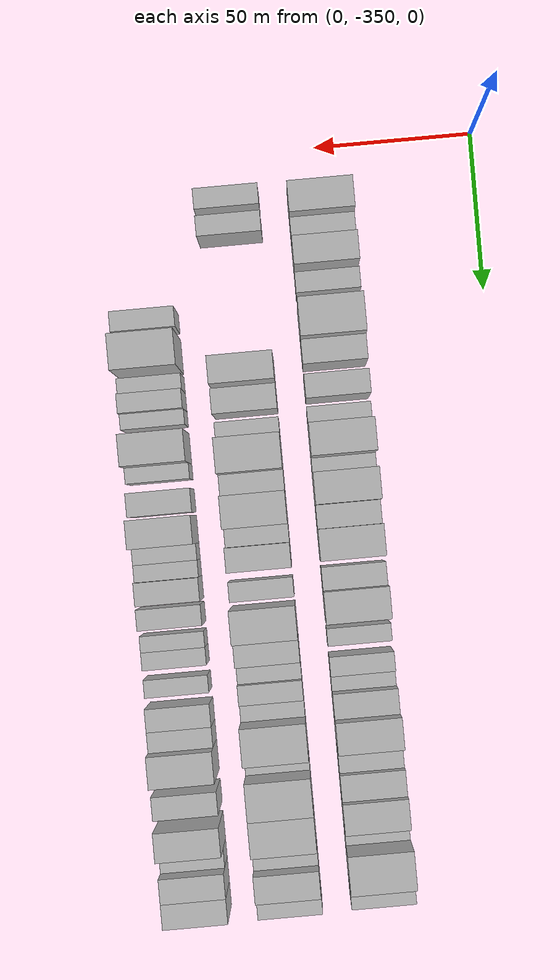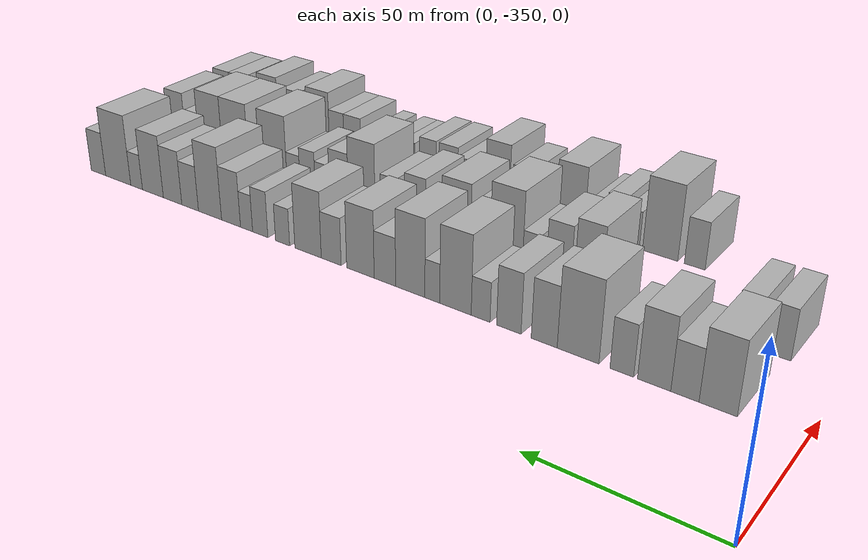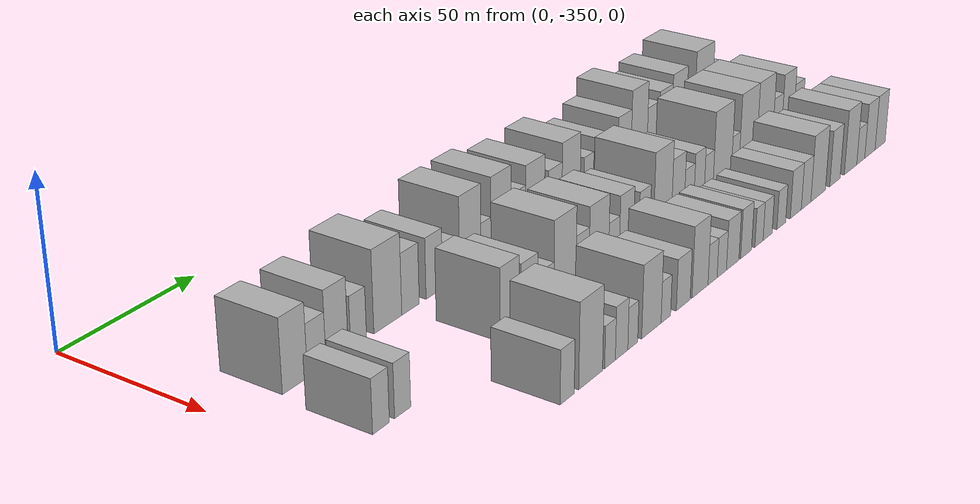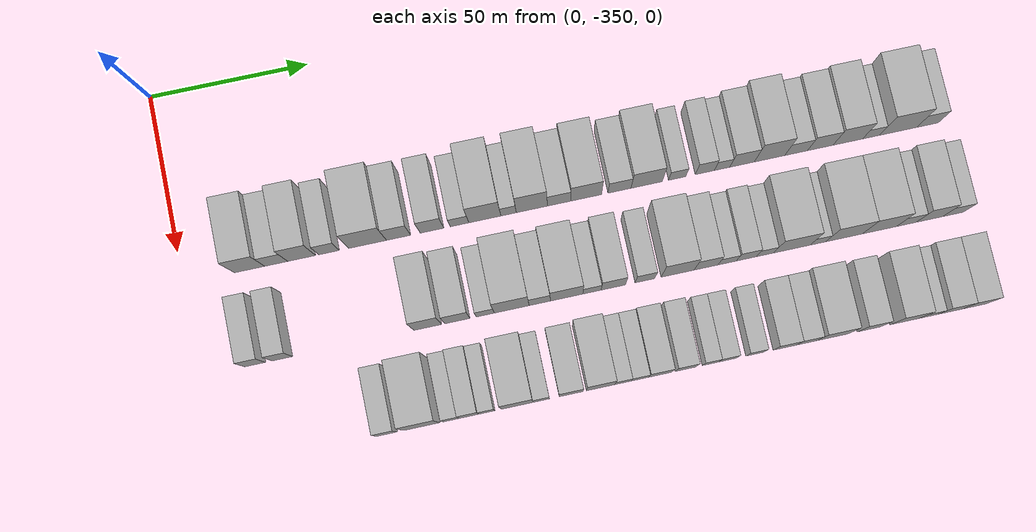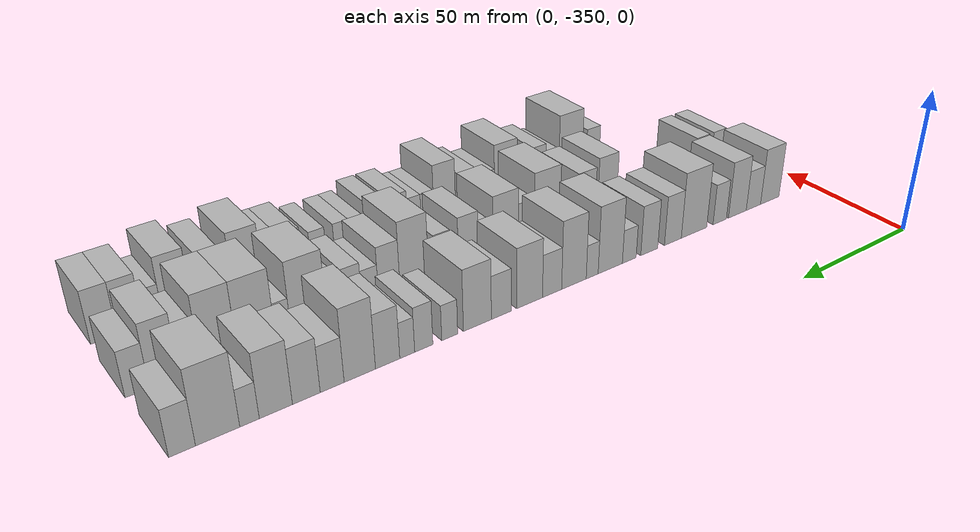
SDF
<sdf version="1.6">
 <world name="default">
  <model name="building_1">
   <static>1</static>
   <pose>50.0000 -329.2814 0 0.000000 0.000000 0.000000</pose>
   <link name="link">
    <pose>0 0 10.50 0 0 0</pose>
    <collision name="collision"><geometry><box><size>20.0000 9.4373 21.0000</size></box></geometry></collision>
    <visual name="visual">
     <cast_shadows>0</cast_shadows>
     <geometry><box><size>20.0000 9.4373 21.0000</size></box></geometry>
     <material>
      <script>
       <uri>model://HANNAS_wall/materials/scripts</uri>
       <uri>model://HANNAS_wall/materials/textures</uri>
       <name>vrc/HANNAS_wall</name>
      </script>
     </material>
    </visual>
   </link>
  </model>
  <model name="building_2">
   <static>1</static>
   <pose>50.0000 -320.9805 0 0.000000 0.000000 0.000000</pose>
   <link name="link">
    <pose>0 0 7.50 0 0 0</pose>
    <collision name="collision"><geometry><box><size>20.0000 7.1644 15.0000</size></box></geometry></collision>
    <visual name="visual">
     <cast_shadows>0</cast_shadows>
     <geometry><box><size>20.0000 7.1644 15.0000</size></box></geometry>
     <material>
      <script>
       <uri>model://HANNAS_wall/materials/scripts</uri>
       <uri>model://HANNAS_wall/materials/textures</uri>
       <name>vrc/HANNAS_wall</name>
      </script>
     </material>
    </visual>
   </link>
  </model>
  <model name="building_3">
   <static>1</static>
   <pose>50.0000 -313.0436 0 0.000000 0.000000 0.000000</pose>
   <link name="link">
    <pose>0 0 10.50 0 0 0</pose>
    <collision name="collision"><geometry><box><size>20.0000 8.7095 21.0000</size></box></geometry></collision>
    <visual name="visual">
     <cast_shadows>0</cast_shadows>
     <geometry><box><size>20.0000 8.7095 21.0000</size></box></geometry>
     <material>
      <script>
       <uri>model://HANNAS_wall/materials/scripts</uri>
       <uri>model://HANNAS_wall/materials/textures</uri>
       <name>vrc/HANNAS_wall</name>
      </script>
     </material>
    </visual>
   </link>
  </model>
  <model name="building_4">
   <static>1</static>
   <pose>50.0000 -304.4824 0 0.000000 0.000000 0.000000</pose>
   <link name="link">
    <pose>0 0 7.50 0 0 0</pose>
    <collision name="collision"><geometry><box><size>20.0000 6.4129 15.0000</size></box></geometry></collision>
    <visual name="visual">
     <cast_shadows>0</cast_shadows>
     <geometry><box><size>20.0000 6.4129 15.0000</size></box></geometry>
     <material>
      <script>
       <uri>model://HANNAS_wall/materials/scripts</uri>
       <uri>model://HANNAS_wall/materials/textures</uri>
       <name>vrc/HANNAS_wall</name>
      </script>
     </material>
    </visual>
   </link>
  </model>
  <model name="building_5">
   <static>1</static>
   <pose>50.0000 -292.3860 0 0.000000 0.000000 0.000000</pose>
   <link name="link">
    <pose>0 0 12.00 0 0 0</pose>
    <collision name="collision"><geometry><box><size>20.0000 11.7800 24.0000</size></box></geometry></collision>
    <visual name="visual">
     <cast_shadows>0</cast_shadows>
     <geometry><box><size>20.0000 11.7800 24.0000</size></box></geometry>
     <material>
      <script>
       <uri>model://HANNAS_wall/materials/scripts</uri>
       <uri>model://HANNAS_wall/materials/textures</uri>
       <name>vrc/HANNAS_wall</name>
      </script>
     </material>
    </visual>
   </link>
  </model>
  <model name="building_6">
   <static>1</static>
   <pose>50.0000 -282.7024 0 0.000000 0.000000 0.000000</pose>
   <link name="link">
    <pose>0 0 9.00 0 0 0</pose>
    <collision name="collision"><geometry><box><size>20.0000 7.5872 18.0000</size></box></geometry></collision>
    <visual name="visual">
     <cast_shadows>0</cast_shadows>
     <geometry><box><size>20.0000 7.5872 18.0000</size></box></geometry>
     <material>
      <script>
       <uri>model://HANNAS_wall/materials/scripts</uri>
       <uri>model://HANNAS_wall/materials/textures</uri>
       <name>vrc/HANNAS_wall</name>
      </script>
     </material>
    </visual>
   </link>
  </model>
  <model name="building_7">
   <static>1</static>
   <pose>50.0000 -272.2078 0 0.000000 0.000000 0.000000</pose>
   <link name="link">
    <pose>0 0 9.00 0 0 0</pose>
    <collision name="collision"><geometry><box><size>20.0000 7.4020 18.0000</size></box></geometry></collision>
    <visual name="visual">
     <cast_shadows>0</cast_shadows>
     <geometry><box><size>20.0000 7.4020 18.0000</size></box></geometry>
     <material>
      <script>
       <uri>model://HANNAS_wall/materials/scripts</uri>
       <uri>model://HANNAS_wall/materials/textures</uri>
       <name>vrc/HANNAS_wall</name>
      </script>
     </material>
    </visual>
   </link>
  </model>
  <model name="building_8">
   <static>1</static>
   <pose>50.0000 -263.5721 0 0.000000 0.000000 0.000000</pose>
   <link name="link">
    <pose>0 0 6.00 0 0 0</pose>
    <collision name="collision"><geometry><box><size>20.0000 5.8693 12.0000</size></box></geometry></collision>
    <visual name="visual">
     <cast_shadows>0</cast_shadows>
     <geometry><box><size>20.0000 5.8693 12.0000</size></box></geometry>
     <material>
      <script>
       <uri>model://HANNAS_wall/materials/scripts</uri>
       <uri>model://HANNAS_wall/materials/textures</uri>
       <name>vrc/HANNAS_wall</name>
      </script>
     </material>
    </visual>
   </link>
  </model>
  <model name="building_9">
   <static>1</static>
   <pose>50.0000 -255.5919 0 0.000000 0.000000 0.000000</pose>
   <link name="link">
    <pose>0 0 12.00 0 0 0</pose>
    <collision name="collision"><geometry><box><size>20.0000 10.0912 24.0000</size></box></geometry></collision>
    <visual name="visual">
     <cast_shadows>0</cast_shadows>
     <geometry><box><size>20.0000 10.0912 24.0000</size></box></geometry>
     <material>
      <script>
       <uri>model://HANNAS_wall/materials/scripts</uri>
       <uri>model://HANNAS_wall/materials/textures</uri>
       <name>vrc/HANNAS_wall</name>
      </script>
     </material>
    </visual>
   </link>
  </model>
  <model name="building_10">
   <static>1</static>
   <pose>50.0000 -248.1184 0 0.000000 0.000000 0.000000</pose>
   <link name="link">
    <pose>0 0 6.00 0 0 0</pose>
    <collision name="collision"><geometry><box><size>20.0000 4.8559 12.0000</size></box></geometry></collision>
    <visual name="visual">
     <cast_shadows>0</cast_shadows>
     <geometry><box><size>20.0000 4.8559 12.0000</size></box></geometry>
     <material>
      <script>
       <uri>model://HANNAS_wall/materials/scripts</uri>
       <uri>model://HANNAS_wall/materials/textures</uri>
       <name>vrc/HANNAS_wall</name>
      </script>
     </material>
    </visual>
   </link>
  </model>
  <model name="building_11">
   <static>1</static>
   <pose>50.0000 -240.7936 0 0.000000 0.000000 0.000000</pose>
   <link name="link">
    <pose>0 0 12.00 0 0 0</pose>
    <collision name="collision"><geometry><box><size>20.0000 9.7935 24.0000</size></box></geometry></collision>
    <visual name="visual">
     <cast_shadows>0</cast_shadows>
     <geometry><box><size>20.0000 9.7935 24.0000</size></box></geometry>
     <material>
      <script>
       <uri>model://HANNAS_wall/materials/scripts</uri>
       <uri>model://HANNAS_wall/materials/textures</uri>
       <name>vrc/HANNAS_wall</name>
      </script>
     </material>
    </visual>
   </link>
  </model>
  <model name="building_12">
   <static>1</static>
   <pose>50.0000 -232.1955 0 0.000000 0.000000 0.000000</pose>
   <link name="link">
    <pose>0 0 7.50 0 0 0</pose>
    <collision name="collision"><geometry><box><size>20.0000 7.4026 15.0000</size></box></geometry></collision>
    <visual name="visual">
     <cast_shadows>0</cast_shadows>
     <geometry><box><size>20.0000 7.4026 15.0000</size></box></geometry>
     <material>
      <script>
       <uri>model://HANNAS_wall/materials/scripts</uri>
       <uri>model://HANNAS_wall/materials/textures</uri>
       <name>vrc/HANNAS_wall</name>
      </script>
     </material>
    </visual>
   </link>
  </model>
  <model name="building_13">
   <static>1</static>
   <pose>50.0000 -223.6190 0 0.000000 0.000000 0.000000</pose>
   <link name="link">
    <pose>0 0 10.50 0 0 0</pose>
    <collision name="collision"><geometry><box><size>20.0000 9.7504 21.0000</size></box></geometry></collision>
    <visual name="visual">
     <cast_shadows>0</cast_shadows>
     <geometry><box><size>20.0000 9.7504 21.0000</size></box></geometry>
     <material>
      <script>
       <uri>model://HANNAS_wall/materials/scripts</uri>
       <uri>model://HANNAS_wall/materials/textures</uri>
       <name>vrc/HANNAS_wall</name>
      </script>
     </material>
    </visual>
   </link>
  </model>
  <model name="building_14">
   <static>1</static>
   <pose>50.0000 -213.1041 0 0.000000 0.000000 0.000000</pose>
   <link name="link">
    <pose>0 0 7.50 0 0 0</pose>
    <collision name="collision"><geometry><box><size>20.0000 7.2796 15.0000</size></box></geometry></collision>
    <visual name="visual">
     <cast_shadows>0</cast_shadows>
     <geometry><box><size>20.0000 7.2796 15.0000</size></box></geometry>
     <material>
      <script>
       <uri>model://HANNAS_wall/materials/scripts</uri>
       <uri>model://HANNAS_wall/materials/textures</uri>
       <name>vrc/HANNAS_wall</name>
      </script>
     </material>
    </visual>
   </link>
  </model>
  <model name="building_15">
   <static>1</static>
   <pose>50.0000 -204.4981 0 0.000000 0.000000 0.000000</pose>
   <link name="link">
    <pose>0 0 10.50 0 0 0</pose>
    <collision name="collision"><geometry><box><size>20.0000 9.9324 21.0000</size></box></geometry></collision>
    <visual name="visual">
     <cast_shadows>0</cast_shadows>
     <geometry><box><size>20.0000 9.9324 21.0000</size></box></geometry>
     <material>
      <script>
       <uri>model://HANNAS_wall/materials/scripts</uri>
       <uri>model://HANNAS_wall/materials/textures</uri>
       <name>vrc/HANNAS_wall</name>
      </script>
     </material>
    </visual>
   </link>
  </model>
  <model name="building_16">
   <static>1</static>
   <pose>50.0000 -194.7910 0 0.000000 0.000000 0.000000</pose>
   <link name="link">
    <pose>0 0 6.00 0 0 0</pose>
    <collision name="collision"><geometry><box><size>20.0000 5.4818 12.0000</size></box></geometry></collision>
    <visual name="visual">
     <cast_shadows>0</cast_shadows>
     <geometry><box><size>20.0000 5.4818 12.0000</size></box></geometry>
     <material>
      <script>
       <uri>model://HANNAS_wall/materials/scripts</uri>
       <uri>model://HANNAS_wall/materials/textures</uri>
       <name>vrc/HANNAS_wall</name>
      </script>
     </material>
    </visual>
   </link>
  </model>
  <model name="building_17">
   <static>1</static>
   <pose>50.0000 -186.0106 0 0.000000 0.000000 0.000000</pose>
   <link name="link">
    <pose>0 0 7.50 0 0 0</pose>
    <collision name="collision"><geometry><box><size>20.0000 6.0790 15.0000</size></box></geometry></collision>
    <visual name="visual">
     <cast_shadows>0</cast_shadows>
     <geometry><box><size>20.0000 6.0790 15.0000</size></box></geometry>
     <material>
      <script>
       <uri>model://HANNAS_wall/materials/scripts</uri>
       <uri>model://HANNAS_wall/materials/textures</uri>
       <name>vrc/HANNAS_wall</name>
      </script>
     </material>
    </visual>
   </link>
  </model>
  <model name="building_18">
   <static>1</static>
   <pose>50.0000 -180.5212 0 0.000000 0.000000 0.000000</pose>
   <link name="link">
    <pose>0 0 6.00 0 0 0</pose>
    <collision name="collision"><geometry><box><size>20.0000 4.8997 12.0000</size></box></geometry></collision>
    <visual name="visual">
     <cast_shadows>0</cast_shadows>
     <geometry><box><size>20.0000 4.8997 12.0000</size></box></geometry>
     <material>
      <script>
       <uri>model://HANNAS_wall/materials/scripts</uri>
       <uri>model://HANNAS_wall/materials/textures</uri>
       <name>vrc/HANNAS_wall</name>
      </script>
     </material>
    </visual>
   </link>
  </model>
  <model name="building_19">
   <static>1</static>
   <pose>50.0000 -174.1651 0 0.000000 0.000000 0.000000</pose>
   <link name="link">
    <pose>0 0 9.00 0 0 0</pose>
    <collision name="collision"><geometry><box><size>20.0000 7.8126 18.0000</size></box></geometry></collision>
    <visual name="visual">
     <cast_shadows>0</cast_shadows>
     <geometry><box><size>20.0000 7.8126 18.0000</size></box></geometry>
     <material>
      <script>
       <uri>model://HANNAS_wall/materials/scripts</uri>
       <uri>model://HANNAS_wall/materials/textures</uri>
       <name>vrc/HANNAS_wall</name>
      </script>
     </material>
    </visual>
   </link>
  </model>
  <model name="building_20">
   <static>1</static>
   <pose>50.0000 -165.3733 0 0.000000 0.000000 0.000000</pose>
   <link name="link">
    <pose>0 0 12.00 0 0 0</pose>
    <collision name="collision"><geometry><box><size>20.0000 9.7710 24.0000</size></box></geometry></collision>
    <visual name="visual">
     <cast_shadows>0</cast_shadows>
     <geometry><box><size>20.0000 9.7710 24.0000</size></box></geometry>
     <material>
      <script>
       <uri>model://HANNAS_wall/materials/scripts</uri>
       <uri>model://HANNAS_wall/materials/textures</uri>
       <name>vrc/HANNAS_wall</name>
      </script>
     </material>
    </visual>
   </link>
  </model>
  <model name="building_21">
   <static>1</static>
   <pose>50.0000 -156.8702 0 0.000000 0.000000 0.000000</pose>
   <link name="link">
    <pose>0 0 7.50 0 0 0</pose>
    <collision name="collision"><geometry><box><size>20.0000 7.2352 15.0000</size></box></geometry></collision>
    <visual name="visual">
     <cast_shadows>0</cast_shadows>
     <geometry><box><size>20.0000 7.2352 15.0000</size></box></geometry>
     <material>
      <script>
       <uri>model://HANNAS_wall/materials/scripts</uri>
       <uri>model://HANNAS_wall/materials/textures</uri>
       <name>vrc/HANNAS_wall</name>
      </script>
     </material>
    </visual>
   </link>
  </model>
  <model name="building_22">
   <static>1</static>
   <pose>50.0000 -149.1597 0 0.000000 0.000000 0.000000</pose>
   <link name="link">
    <pose>0 0 9.00 0 0 0</pose>
    <collision name="collision"><geometry><box><size>20.0000 8.1858 18.0000</size></box></geometry></collision>
    <visual name="visual">
     <cast_shadows>0</cast_shadows>
     <geometry><box><size>20.0000 8.1858 18.0000</size></box></geometry>
     <material>
      <script>
       <uri>model://HANNAS_wall/materials/scripts</uri>
       <uri>model://HANNAS_wall/materials/textures</uri>
       <name>vrc/HANNAS_wall</name>
      </script>
     </material>
    </visual>
   </link>
  </model>
  <model name="building_23">
   <static>1</static>
   <pose>50.0000 -140.3261 0 0.000000 0.000000 0.000000</pose>
   <link name="link">
    <pose>0 0 10.50 0 0 0</pose>
    <collision name="collision"><geometry><box><size>20.0000 9.4813 21.0000</size></box></geometry></collision>
    <visual name="visual">
     <cast_shadows>0</cast_shadows>
     <geometry><box><size>20.0000 9.4813 21.0000</size></box></geometry>
     <material>
      <script>
       <uri>model://HANNAS_wall/materials/scripts</uri>
       <uri>model://HANNAS_wall/materials/textures</uri>
       <name>vrc/HANNAS_wall</name>
      </script>
     </material>
    </visual>
   </link>
  </model>
  <model name="building_24">
   <static>1</static>
   <pose>50.0000 -132.8740 0 0.000000 0.000000 0.000000</pose>
   <link name="link">
    <pose>0 0 6.00 0 0 0</pose>
    <collision name="collision"><geometry><box><size>20.0000 5.4228 12.0000</size></box></geometry></collision>
    <visual name="visual">
     <cast_shadows>0</cast_shadows>
     <geometry><box><size>20.0000 5.4228 12.0000</size></box></geometry>
     <material>
      <script>
       <uri>model://HANNAS_wall/materials/scripts</uri>
       <uri>model://HANNAS_wall/materials/textures</uri>
       <name>vrc/HANNAS_wall</name>
      </script>
     </material>
    </visual>
   </link>
  </model>
  <model name="building_25">
   <static>1</static>
   <pose>50.0000 -124.2080 0 0.000000 0.000000 0.000000</pose>
   <link name="link">
    <pose>0 0 12.00 0 0 0</pose>
    <collision name="collision"><geometry><box><size>20.0000 11.9093 24.0000</size></box></geometry></collision>
    <visual name="visual">
     <cast_shadows>0</cast_shadows>
     <geometry><box><size>20.0000 11.9093 24.0000</size></box></geometry>
     <material>
      <script>
       <uri>model://HANNAS_wall/materials/scripts</uri>
       <uri>model://HANNAS_wall/materials/textures</uri>
       <name>vrc/HANNAS_wall</name>
      </script>
     </material>
    </visual>
   </link>
  </model>
  <model name="building_26">
   <static>1</static>
   <pose>50.0000 -114.7484 0 0.000000 0.000000 0.000000</pose>
   <link name="link">
    <pose>0 0 7.50 0 0 0</pose>
    <collision name="collision"><geometry><box><size>20.0000 7.0100 15.0000</size></box></geometry></collision>
    <visual name="visual">
     <cast_shadows>0</cast_shadows>
     <geometry><box><size>20.0000 7.0100 15.0000</size></box></geometry>
     <material>
      <script>
       <uri>model://HANNAS_wall/materials/scripts</uri>
       <uri>model://HANNAS_wall/materials/textures</uri>
       <name>vrc/HANNAS_wall</name>
      </script>
     </material>
    </visual>
   </link>
  </model>
  <model name="building_80">
   <static>1</static>
   <pose>79.0000 -332.8079 0 0.000000 0.000000 0.000000</pose>
   <link name="link">
    <pose>0 0 7.50 0 0 0</pose>
    <collision name="collision"><geometry><box><size>20.0000 6.3842 15.0000</size></box></geometry></collision>
    <visual name="visual">
     <cast_shadows>0</cast_shadows>
     <geometry><box><size>20.0000 6.3842 15.0000</size></box></geometry>
     <material>
      <script>
       <uri>model://HANNAS_wall/materials/scripts</uri>
       <uri>model://HANNAS_wall/materials/textures</uri>
       <name>vrc/HANNAS_wall</name>
      </script>
     </material>
    </visual>
   </link>
  </model>
  <model name="building_81">
   <static>1</static>
   <pose>79.0000 -324.4502 0 0.000000 0.000000 0.000000</pose>
   <link name="link">
    <pose>0 0 7.50 0 0 0</pose>
    <collision name="collision"><geometry><box><size>20.0000 6.3311 15.0000</size></box></geometry></collision>
    <visual name="visual">
     <cast_shadows>0</cast_shadows>
     <geometry><box><size>20.0000 6.3311 15.0000</size></box></geometry>
     <material>
      <script>
       <uri>model://HANNAS_wall/materials/scripts</uri>
       <uri>model://HANNAS_wall/materials/textures</uri>
       <name>vrc/HANNAS_wall</name>
      </script>
     </material>
    </visual>
   </link>
  </model>
  <model name="building_82">
   <static>1</static>
   <pose>79.0000 -279.3735 0 0.000000 0.000000 0.000000</pose>
   <link name="link">
    <pose>0 0 10.50 0 0 0</pose>
    <collision name="collision"><geometry><box><size>20.0000 8.6075 21.0000</size></box></geometry></collision>
    <visual name="visual">
     <cast_shadows>0</cast_shadows>
     <geometry><box><size>20.0000 8.6075 21.0000</size></box></geometry>
     <material>
      <script>
       <uri>model://HANNAS_wall/materials/scripts</uri>
       <uri>model://HANNAS_wall/materials/textures</uri>
       <name>vrc/HANNAS_wall</name>
      </script>
     </material>
    </visual>
   </link>
  </model>
  <model name="building_83">
   <static>1</static>
   <pose>79.0000 -270.1628 0 0.000000 0.000000 0.000000</pose>
   <link name="link">
    <pose>0 0 9.00 0 0 0</pose>
    <collision name="collision"><geometry><box><size>20.0000 7.8139 18.0000</size></box></geometry></collision>
    <visual name="visual">
     <cast_shadows>0</cast_shadows>
     <geometry><box><size>20.0000 7.8139 18.0000</size></box></geometry>
     <material>
      <script>
       <uri>model://HANNAS_wall/materials/scripts</uri>
       <uri>model://HANNAS_wall/materials/textures</uri>
       <name>vrc/HANNAS_wall</name>
      </script>
     </material>
    </visual>
   </link>
  </model>
  <model name="building_84">
   <static>1</static>
   <pose>79.0000 -261.4502 0 0.000000 0.000000 0.000000</pose>
   <link name="link">
    <pose>0 0 6.00 0 0 0</pose>
    <collision name="collision"><geometry><box><size>20.0000 5.6114 12.0000</size></box></geometry></collision>
    <visual name="visual">
     <cast_shadows>0</cast_shadows>
     <geometry><box><size>20.0000 5.6114 12.0000</size></box></geometry>
     <material>
      <script>
       <uri>model://HANNAS_wall/materials/scripts</uri>
       <uri>model://HANNAS_wall/materials/textures</uri>
       <name>vrc/HANNAS_wall</name>
      </script>
     </material>
    </visual>
   </link>
  </model>
  <model name="building_85">
   <static>1</static>
   <pose>79.0000 -253.2182 0 0.000000 0.000000 0.000000</pose>
   <link name="link">
    <pose>0 0 12.00 0 0 0</pose>
    <collision name="collision"><geometry><box><size>20.0000 10.8526 24.0000</size></box></geometry></collision>
    <visual name="visual">
     <cast_shadows>0</cast_shadows>
     <geometry><box><size>20.0000 10.8526 24.0000</size></box></geometry>
     <material>
      <script>
       <uri>model://HANNAS_wall/materials/scripts</uri>
       <uri>model://HANNAS_wall/materials/textures</uri>
       <name>vrc/HANNAS_wall</name>
      </script>
     </material>
    </visual>
   </link>
  </model>
  <model name="building_86">
   <static>1</static>
   <pose>79.0000 -244.4801 0 0.000000 0.000000 0.000000</pose>
   <link name="link">
    <pose>0 0 7.50 0 0 0</pose>
    <collision name="collision"><geometry><box><size>20.0000 6.6237 15.0000</size></box></geometry></collision>
    <visual name="visual">
     <cast_shadows>0</cast_shadows>
     <geometry><box><size>20.0000 6.6237 15.0000</size></box></geometry>
     <material>
      <script>
       <uri>model://HANNAS_wall/materials/scripts</uri>
       <uri>model://HANNAS_wall/materials/textures</uri>
       <name>vrc/HANNAS_wall</name>
      </script>
     </material>
    </visual>
   </link>
  </model>
  <model name="building_87">
   <static>1</static>
   <pose>79.0000 -236.0986 0 0.000000 0.000000 0.000000</pose>
   <link name="link">
    <pose>0 0 10.50 0 0 0</pose>
    <collision name="collision"><geometry><box><size>20.0000 10.1392 21.0000</size></box></geometry></collision>
    <visual name="visual">
     <cast_shadows>0</cast_shadows>
     <geometry><box><size>20.0000 10.1392 21.0000</size></box></geometry>
     <material>
      <script>
       <uri>model://HANNAS_wall/materials/scripts</uri>
       <uri>model://HANNAS_wall/materials/textures</uri>
       <name>vrc/HANNAS_wall</name>
      </script>
     </material>
    </visual>
   </link>
  </model>
  <model name="building_88">
   <static>1</static>
   <pose>79.0000 -228.1638 0 0.000000 0.000000 0.000000</pose>
   <link name="link">
    <pose>0 0 6.00 0 0 0</pose>
    <collision name="collision"><geometry><box><size>20.0000 5.7304 12.0000</size></box></geometry></collision>
    <visual name="visual">
     <cast_shadows>0</cast_shadows>
     <geometry><box><size>20.0000 5.7304 12.0000</size></box></geometry>
     <material>
      <script>
       <uri>model://HANNAS_wall/materials/scripts</uri>
       <uri>model://HANNAS_wall/materials/textures</uri>
       <name>vrc/HANNAS_wall</name>
      </script>
     </material>
    </visual>
   </link>
  </model>
  <model name="building_89">
   <static>1</static>
   <pose>79.0000 -221.4767 0 0.000000 0.000000 0.000000</pose>
   <link name="link">
    <pose>0 0 9.00 0 0 0</pose>
    <collision name="collision"><geometry><box><size>20.0000 7.6439 18.0000</size></box></geometry></collision>
    <visual name="visual">
     <cast_shadows>0</cast_shadows>
     <geometry><box><size>20.0000 7.6439 18.0000</size></box></geometry>
     <material>
      <script>
       <uri>model://HANNAS_wall/materials/scripts</uri>
       <uri>model://HANNAS_wall/materials/textures</uri>
       <name>vrc/HANNAS_wall</name>
      </script>
     </material>
    </visual>
   </link>
  </model>
  <model name="building_90">
   <static>1</static>
   <pose>79.0000 -211.5682 0 0.000000 0.000000 0.000000</pose>
   <link name="link">
    <pose>0 0 7.50 0 0 0</pose>
    <collision name="collision"><geometry><box><size>20.0000 6.1731 15.0000</size></box></geometry></collision>
    <visual name="visual">
     <cast_shadows>0</cast_shadows>
     <geometry><box><size>20.0000 6.1731 15.0000</size></box></geometry>
     <material>
      <script>
       <uri>model://HANNAS_wall/materials/scripts</uri>
       <uri>model://HANNAS_wall/materials/textures</uri>
       <name>vrc/HANNAS_wall</name>
      </script>
     </material>
    </visual>
   </link>
  </model>
  <model name="building_91">
   <static>1</static>
   <pose>79.0000 -201.2992 0 0.000000 0.000000 0.000000</pose>
   <link name="link">
    <pose>0 0 12.00 0 0 0</pose>
    <collision name="collision"><geometry><box><size>20.0000 10.3650 24.0000</size></box></geometry></collision>
    <visual name="visual">
     <cast_shadows>0</cast_shadows>
     <geometry><box><size>20.0000 10.3650 24.0000</size></box></geometry>
     <material>
      <script>
       <uri>model://HANNAS_wall/materials/scripts</uri>
       <uri>model://HANNAS_wall/materials/textures</uri>
       <name>vrc/HANNAS_wall</name>
      </script>
     </material>
    </visual>
   </link>
  </model>
  <model name="building_92">
   <static>1</static>
   <pose>79.0000 -192.3547 0 0.000000 0.000000 0.000000</pose>
   <link name="link">
    <pose>0 0 9.00 0 0 0</pose>
    <collision name="collision"><geometry><box><size>20.0000 7.5241 18.0000</size></box></geometry></collision>
    <visual name="visual">
     <cast_shadows>0</cast_shadows>
     <geometry><box><size>20.0000 7.5241 18.0000</size></box></geometry>
     <material>
      <script>
       <uri>model://HANNAS_wall/materials/scripts</uri>
       <uri>model://HANNAS_wall/materials/textures</uri>
       <name>vrc/HANNAS_wall</name>
      </script>
     </material>
    </visual>
   </link>
  </model>
  <model name="building_93">
   <static>1</static>
   <pose>79.0000 -185.7040 0 0.000000 0.000000 0.000000</pose>
   <link name="link">
    <pose>0 0 6.00 0 0 0</pose>
    <collision name="collision"><geometry><box><size>20.0000 5.7774 12.0000</size></box></geometry></collision>
    <visual name="visual">
     <cast_shadows>0</cast_shadows>
     <geometry><box><size>20.0000 5.7774 12.0000</size></box></geometry>
     <material>
      <script>
       <uri>model://HANNAS_wall/materials/scripts</uri>
       <uri>model://HANNAS_wall/materials/textures</uri>
       <name>vrc/HANNAS_wall</name>
      </script>
     </material>
    </visual>
   </link>
  </model>
  <model name="building_94">
   <static>1</static>
   <pose>79.0000 -179.6791 0 0.000000 0.000000 0.000000</pose>
   <link name="link">
    <pose>0 0 7.50 0 0 0</pose>
    <collision name="collision"><geometry><box><size>20.0000 6.2723 15.0000</size></box></geometry></collision>
    <visual name="visual">
     <cast_shadows>0</cast_shadows>
     <geometry><box><size>20.0000 6.2723 15.0000</size></box></geometry>
     <material>
      <script>
       <uri>model://HANNAS_wall/materials/scripts</uri>
       <uri>model://HANNAS_wall/materials/textures</uri>
       <name>vrc/HANNAS_wall</name>
      </script>
     </material>
    </visual>
   </link>
  </model>
  <model name="building_95">
   <static>1</static>
   <pose>79.0000 -173.8075 0 0.000000 0.000000 0.000000</pose>
   <link name="link">
    <pose>0 0 6.00 0 0 0</pose>
    <collision name="collision"><geometry><box><size>20.0000 5.4710 12.0000</size></box></geometry></collision>
    <visual name="visual">
     <cast_shadows>0</cast_shadows>
     <geometry><box><size>20.0000 5.4710 12.0000</size></box></geometry>
     <material>
      <script>
       <uri>model://HANNAS_wall/materials/scripts</uri>
       <uri>model://HANNAS_wall/materials/textures</uri>
       <name>vrc/HANNAS_wall</name>
      </script>
     </material>
    </visual>
   </link>
  </model>
  <model name="building_96">
   <static>1</static>
   <pose>79.0000 -165.2545 0 0.000000 0.000000 0.000000</pose>
   <link name="link">
    <pose>0 0 12.00 0 0 0</pose>
    <collision name="collision"><geometry><box><size>20.0000 11.6350 24.0000</size></box></geometry></collision>
    <visual name="visual">
     <cast_shadows>0</cast_shadows>
     <geometry><box><size>20.0000 11.6350 24.0000</size></box></geometry>
     <material>
      <script>
       <uri>model://HANNAS_wall/materials/scripts</uri>
       <uri>model://HANNAS_wall/materials/textures</uri>
       <name>vrc/HANNAS_wall</name>
      </script>
     </material>
    </visual>
   </link>
  </model>
  <model name="building_97">
   <static>1</static>
   <pose>79.0000 -156.9919 0 0.000000 0.000000 0.000000</pose>
   <link name="link">
    <pose>0 0 6.00 0 0 0</pose>
    <collision name="collision"><geometry><box><size>20.0000 4.8903 12.0000</size></box></geometry></collision>
    <visual name="visual">
     <cast_shadows>0</cast_shadows>
     <geometry><box><size>20.0000 4.8903 12.0000</size></box></geometry>
     <material>
      <script>
       <uri>model://HANNAS_wall/materials/scripts</uri>
       <uri>model://HANNAS_wall/materials/textures</uri>
       <name>vrc/HANNAS_wall</name>
      </script>
     </material>
    </visual>
   </link>
  </model>
  <model name="building_98">
   <static>1</static>
   <pose>79.0000 -148.7272 0 0.000000 0.000000 0.000000</pose>
   <link name="link">
    <pose>0 0 12.00 0 0 0</pose>
    <collision name="collision"><geometry><box><size>20.0000 11.6391 24.0000</size></box></geometry></collision>
    <visual name="visual">
     <cast_shadows>0</cast_shadows>
     <geometry><box><size>20.0000 11.6391 24.0000</size></box></geometry>
     <material>
      <script>
       <uri>model://HANNAS_wall/materials/scripts</uri>
       <uri>model://HANNAS_wall/materials/textures</uri>
       <name>vrc/HANNAS_wall</name>
      </script>
     </material>
    </visual>
   </link>
  </model>
  <model name="building_99">
   <static>1</static>
   <pose>79.0000 -137.5012 0 0.000000 0.000000 0.000000</pose>
   <link name="link">
    <pose>0 0 12.00 0 0 0</pose>
    <collision name="collision"><geometry><box><size>20.0000 10.8128 24.0000</size></box></geometry></collision>
    <visual name="visual">
     <cast_shadows>0</cast_shadows>
     <geometry><box><size>20.0000 10.8128 24.0000</size></box></geometry>
     <material>
      <script>
       <uri>model://HANNAS_wall/materials/scripts</uri>
       <uri>model://HANNAS_wall/materials/textures</uri>
       <name>vrc/HANNAS_wall</name>
      </script>
     </material>
    </visual>
   </link>
  </model>
  <model name="building_100">
   <static>1</static>
   <pose>79.0000 -128.9704 0 0.000000 0.000000 0.000000</pose>
   <link name="link">
    <pose>0 0 7.50 0 0 0</pose>
    <collision name="collision"><geometry><box><size>20.0000 6.2487 15.0000</size></box></geometry></collision>
    <visual name="visual">
     <cast_shadows>0</cast_shadows>
     <geometry><box><size>20.0000 6.2487 15.0000</size></box></geometry>
     <material>
      <script>
       <uri>model://HANNAS_wall/materials/scripts</uri>
       <uri>model://HANNAS_wall/materials/textures</uri>
       <name>vrc/HANNAS_wall</name>
      </script>
     </material>
    </visual>
   </link>
  </model>
  <model name="building_101">
   <static>1</static>
   <pose>79.0000 -121.6232 0 0.000000 0.000000 0.000000</pose>
   <link name="link">
    <pose>0 0 10.50 0 0 0</pose>
    <collision name="collision"><geometry><box><size>20.0000 8.4457 21.0000</size></box></geometry></collision>
    <visual name="visual">
     <cast_shadows>0</cast_shadows>
     <geometry><box><size>20.0000 8.4457 21.0000</size></box></geometry>
     <material>
      <script>
       <uri>model://HANNAS_wall/materials/scripts</uri>
       <uri>model://HANNAS_wall/materials/textures</uri>
       <name>vrc/HANNAS_wall</name>
      </script>
     </material>
    </visual>
   </link>
  </model>
  <model name="building_102">
   <static>1</static>
   <pose>79.0000 -114.0751 0 0.000000 0.000000 0.000000</pose>
   <link name="link">
    <pose>0 0 7.50 0 0 0</pose>
    <collision name="collision"><geometry><box><size>20.0000 6.6504 15.0000</size></box></geometry></collision>
    <visual name="visual">
     <cast_shadows>0</cast_shadows>
     <geometry><box><size>20.0000 6.6504 15.0000</size></box></geometry>
     <material>
      <script>
       <uri>model://HANNAS_wall/materials/scripts</uri>
       <uri>model://HANNAS_wall/materials/textures</uri>
       <name>vrc/HANNAS_wall</name>
      </script>
     </material>
    </visual>
   </link>
  </model>
  <model name="building_144">
   <static>1</static>
   <pose>108.0000 -297.5879 0 0.000000 0.000000 0.000000</pose>
   <link name="link">
    <pose>0 0 7.50 0 0 0</pose>
    <collision name="collision"><geometry><box><size>20.0000 6.2747 15.0000</size></box></geometry></collision>
    <visual name="visual">
     <cast_shadows>0</cast_shadows>
     <geometry><box><size>20.0000 6.2747 15.0000</size></box></geometry>
     <material>
      <script>
       <uri>model://HANNAS_wall/materials/scripts</uri>
       <uri>model://HANNAS_wall/materials/textures</uri>
       <name>vrc/HANNAS_wall</name>
      </script>
     </material>
    </visual>
   </link>
  </model>
  <model name="building_145">
   <static>1</static>
   <pose>108.0000 -286.9539 0 0.000000 0.000000 0.000000</pose>
   <link name="link">
    <pose>0 0 12.00 0 0 0</pose>
    <collision name="collision"><geometry><box><size>20.0000 10.9932 24.0000</size></box></geometry></collision>
    <visual name="visual">
     <cast_shadows>0</cast_shadows>
     <geometry><box><size>20.0000 10.9932 24.0000</size></box></geometry>
     <material>
      <script>
       <uri>model://HANNAS_wall/materials/scripts</uri>
       <uri>model://HANNAS_wall/materials/textures</uri>
       <name>vrc/HANNAS_wall</name>
      </script>
     </material>
    </visual>
   </link>
  </model>
  <model name="building_146">
   <static>1</static>
   <pose>108.0000 -277.9150 0 0.000000 0.000000 0.000000</pose>
   <link name="link">
    <pose>0 0 6.00 0 0 0</pose>
    <collision name="collision"><geometry><box><size>20.0000 5.0848 12.0000</size></box></geometry></collision>
    <visual name="visual">
     <cast_shadows>0</cast_shadows>
     <geometry><box><size>20.0000 5.0848 12.0000</size></box></geometry>
     <material>
      <script>
       <uri>model://HANNAS_wall/materials/scripts</uri>
       <uri>model://HANNAS_wall/materials/textures</uri>
       <name>vrc/HANNAS_wall</name>
      </script>
     </material>
    </visual>
   </link>
  </model>
  <model name="building_147">
   <static>1</static>
   <pose>108.0000 -272.3569 0 0.000000 0.000000 0.000000</pose>
   <link name="link">
    <pose>0 0 7.50 0 0 0</pose>
    <collision name="collision"><geometry><box><size>20.0000 6.0312 15.0000</size></box></geometry></collision>
    <visual name="visual">
     <cast_shadows>0</cast_shadows>
     <geometry><box><size>20.0000 6.0312 15.0000</size></box></geometry>
     <material>
      <script>
       <uri>model://HANNAS_wall/materials/scripts</uri>
       <uri>model://HANNAS_wall/materials/textures</uri>
       <name>vrc/HANNAS_wall</name>
      </script>
     </material>
    </visual>
   </link>
  </model>
  <model name="building_148">
   <static>1</static>
   <pose>108.0000 -266.9113 0 0.000000 0.000000 0.000000</pose>
   <link name="link">
    <pose>0 0 6.00 0 0 0</pose>
    <collision name="collision"><geometry><box><size>20.0000 4.8600 12.0000</size></box></geometry></collision>
    <visual name="visual">
     <cast_shadows>0</cast_shadows>
     <geometry><box><size>20.0000 4.8600 12.0000</size></box></geometry>
     <material>
      <script>
       <uri>model://HANNAS_wall/materials/scripts</uri>
       <uri>model://HANNAS_wall/materials/textures</uri>
       <name>vrc/HANNAS_wall</name>
      </script>
     </material>
    </visual>
   </link>
  </model>
  <model name="building_149">
   <static>1</static>
   <pose>108.0000 -257.5633 0 0.000000 0.000000 0.000000</pose>
   <link name="link">
    <pose>0 0 10.50 0 0 0</pose>
    <collision name="collision"><geometry><box><size>20.0000 9.8360 21.0000</size></box></geometry></collision>
    <visual name="visual">
     <cast_shadows>0</cast_shadows>
     <geometry><box><size>20.0000 9.8360 21.0000</size></box></geometry>
     <material>
      <script>
       <uri>model://HANNAS_wall/materials/scripts</uri>
       <uri>model://HANNAS_wall/materials/textures</uri>
       <name>vrc/HANNAS_wall</name>
      </script>
     </material>
    </visual>
   </link>
  </model>
  <model name="building_150">
   <static>1</static>
   <pose>108.0000 -250.1561 0 0.000000 0.000000 0.000000</pose>
   <link name="link">
    <pose>0 0 6.00 0 0 0</pose>
    <collision name="collision"><geometry><box><size>20.0000 4.9786 12.0000</size></box></geometry></collision>
    <visual name="visual">
     <cast_shadows>0</cast_shadows>
     <geometry><box><size>20.0000 4.9786 12.0000</size></box></geometry>
     <material>
      <script>
       <uri>model://HANNAS_wall/materials/scripts</uri>
       <uri>model://HANNAS_wall/materials/textures</uri>
       <name>vrc/HANNAS_wall</name>
      </script>
     </material>
    </visual>
   </link>
  </model>
  <model name="building_151">
   <static>1</static>
   <pose>108.0000 -240.9652 0 0.000000 0.000000 0.000000</pose>
   <link name="link">
    <pose>0 0 7.50 0 0 0</pose>
    <collision name="collision"><geometry><box><size>20.0000 7.4030 15.0000</size></box></geometry></collision>
    <visual name="visual">
     <cast_shadows>0</cast_shadows>
     <geometry><box><size>20.0000 7.4030 15.0000</size></box></geometry>
     <material>
      <script>
       <uri>model://HANNAS_wall/materials/scripts</uri>
       <uri>model://HANNAS_wall/materials/textures</uri>
       <name>vrc/HANNAS_wall</name>
      </script>
     </material>
    </visual>
   </link>
  </model>
  <model name="building_152">
   <static>1</static>
   <pose>108.0000 -231.8674 0 0.000000 0.000000 0.000000</pose>
   <link name="link">
    <pose>0 0 10.50 0 0 0</pose>
    <collision name="collision"><geometry><box><size>20.0000 8.7927 21.0000</size></box></geometry></collision>
    <visual name="visual">
     <cast_shadows>0</cast_shadows>
     <geometry><box><size>20.0000 8.7927 21.0000</size></box></geometry>
     <material>
      <script>
       <uri>model://HANNAS_wall/materials/scripts</uri>
       <uri>model://HANNAS_wall/materials/textures</uri>
       <name>vrc/HANNAS_wall</name>
      </script>
     </material>
    </visual>
   </link>
  </model>
  <model name="building_153">
   <static>1</static>
   <pose>108.0000 -224.9116 0 0.000000 0.000000 0.000000</pose>
   <link name="link">
    <pose>0 0 6.00 0 0 0</pose>
    <collision name="collision"><geometry><box><size>20.0000 5.1187 12.0000</size></box></geometry></collision>
    <visual name="visual">
     <cast_shadows>0</cast_shadows>
     <geometry><box><size>20.0000 5.1187 12.0000</size></box></geometry>
     <material>
      <script>
       <uri>model://HANNAS_wall/materials/scripts</uri>
       <uri>model://HANNAS_wall/materials/textures</uri>
       <name>vrc/HANNAS_wall</name>
      </script>
     </material>
    </visual>
   </link>
  </model>
  <model name="building_154">
   <static>1</static>
   <pose>108.0000 -219.6864 0 0.000000 0.000000 0.000000</pose>
   <link name="link">
    <pose>0 0 6.00 0 0 0</pose>
    <collision name="collision"><geometry><box><size>20.0000 5.3317 12.0000</size></box></geometry></collision>
    <visual name="visual">
     <cast_shadows>0</cast_shadows>
     <geometry><box><size>20.0000 5.3317 12.0000</size></box></geometry>
     <material>
      <script>
       <uri>model://HANNAS_wall/materials/scripts</uri>
       <uri>model://HANNAS_wall/materials/textures</uri>
       <name>vrc/HANNAS_wall</name>
      </script>
     </material>
    </visual>
   </link>
  </model>
  <model name="building_155">
   <static>1</static>
   <pose>108.0000 -213.3870 0 0.000000 0.000000 0.000000</pose>
   <link name="link">
    <pose>0 0 7.50 0 0 0</pose>
    <collision name="collision"><geometry><box><size>20.0000 7.2673 15.0000</size></box></geometry></collision>
    <visual name="visual">
     <cast_shadows>0</cast_shadows>
     <geometry><box><size>20.0000 7.2673 15.0000</size></box></geometry>
     <material>
      <script>
       <uri>model://HANNAS_wall/materials/scripts</uri>
       <uri>model://HANNAS_wall/materials/textures</uri>
       <name>vrc/HANNAS_wall</name>
      </script>
     </material>
    </visual>
   </link>
  </model>
  <model name="building_156">
   <static>1</static>
   <pose>108.0000 -205.5102 0 0.000000 0.000000 0.000000</pose>
   <link name="link">
    <pose>0 0 7.50 0 0 0</pose>
    <collision name="collision"><geometry><box><size>20.0000 6.4862 15.0000</size></box></geometry></collision>
    <visual name="visual">
     <cast_shadows>0</cast_shadows>
     <geometry><box><size>20.0000 6.4862 15.0000</size></box></geometry>
     <material>
      <script>
       <uri>model://HANNAS_wall/materials/scripts</uri>
       <uri>model://HANNAS_wall/materials/textures</uri>
       <name>vrc/HANNAS_wall</name>
      </script>
     </material>
    </visual>
   </link>
  </model>
  <model name="building_157">
   <static>1</static>
   <pose>108.0000 -197.7486 0 0.000000 0.000000 0.000000</pose>
   <link name="link">
    <pose>0 0 6.00 0 0 0</pose>
    <collision name="collision"><geometry><box><size>20.0000 5.0370 12.0000</size></box></geometry></collision>
    <visual name="visual">
     <cast_shadows>0</cast_shadows>
     <geometry><box><size>20.0000 5.0370 12.0000</size></box></geometry>
     <material>
      <script>
       <uri>model://HANNAS_wall/materials/scripts</uri>
       <uri>model://HANNAS_wall/materials/textures</uri>
       <name>vrc/HANNAS_wall</name>
      </script>
     </material>
    </visual>
   </link>
  </model>
  <model name="building_158">
   <static>1</static>
   <pose>108.0000 -192.4457 0 0.000000 0.000000 0.000000</pose>
   <link name="link">
    <pose>0 0 6.00 0 0 0</pose>
    <collision name="collision"><geometry><box><size>20.0000 5.5688 12.0000</size></box></geometry></collision>
    <visual name="visual">
     <cast_shadows>0</cast_shadows>
     <geometry><box><size>20.0000 5.5688 12.0000</size></box></geometry>
     <material>
      <script>
       <uri>model://HANNAS_wall/materials/scripts</uri>
       <uri>model://HANNAS_wall/materials/textures</uri>
       <name>vrc/HANNAS_wall</name>
      </script>
     </material>
    </visual>
   </link>
  </model>
  <model name="building_159">
   <static>1</static>
   <pose>108.0000 -183.8930 0 0.000000 0.000000 0.000000</pose>
   <link name="link">
    <pose>0 0 6.00 0 0 0</pose>
    <collision name="collision"><geometry><box><size>20.0000 5.5365 12.0000</size></box></geometry></collision>
    <visual name="visual">
     <cast_shadows>0</cast_shadows>
     <geometry><box><size>20.0000 5.5365 12.0000</size></box></geometry>
     <material>
      <script>
       <uri>model://HANNAS_wall/materials/scripts</uri>
       <uri>model://HANNAS_wall/materials/textures</uri>
       <name>vrc/HANNAS_wall</name>
      </script>
     </material>
    </visual>
   </link>
  </model>
  <model name="building_160">
   <static>1</static>
   <pose>108.0000 -174.5465 0 0.000000 0.000000 0.000000</pose>
   <link name="link">
    <pose>0 0 7.50 0 0 0</pose>
    <collision name="collision"><geometry><box><size>20.0000 7.1565 15.0000</size></box></geometry></collision>
    <visual name="visual">
     <cast_shadows>0</cast_shadows>
     <geometry><box><size>20.0000 7.1565 15.0000</size></box></geometry>
     <material>
      <script>
       <uri>model://HANNAS_wall/materials/scripts</uri>
       <uri>model://HANNAS_wall/materials/textures</uri>
       <name>vrc/HANNAS_wall</name>
      </script>
     </material>
    </visual>
   </link>
  </model>
  <model name="building_161">
   <static>1</static>
   <pose>108.0000 -167.7981 0 0.000000 0.000000 0.000000</pose>
   <link name="link">
    <pose>0 0 7.50 0 0 0</pose>
    <collision name="collision"><geometry><box><size>20.0000 6.3402 15.0000</size></box></geometry></collision>
    <visual name="visual">
     <cast_shadows>0</cast_shadows>
     <geometry><box><size>20.0000 6.3402 15.0000</size></box></geometry>
     <material>
      <script>
       <uri>model://HANNAS_wall/materials/scripts</uri>
       <uri>model://HANNAS_wall/materials/textures</uri>
       <name>vrc/HANNAS_wall</name>
      </script>
     </material>
    </visual>
   </link>
  </model>
  <model name="building_162">
   <static>1</static>
   <pose>108.0000 -159.6950 0 0.000000 0.000000 0.000000</pose>
   <link name="link">
    <pose>0 0 10.50 0 0 0</pose>
    <collision name="collision"><geometry><box><size>20.0000 9.8660 21.0000</size></box></geometry></collision>
    <visual name="visual">
     <cast_shadows>0</cast_shadows>
     <geometry><box><size>20.0000 9.8660 21.0000</size></box></geometry>
     <material>
      <script>
       <uri>model://HANNAS_wall/materials/scripts</uri>
       <uri>model://HANNAS_wall/materials/textures</uri>
       <name>vrc/HANNAS_wall</name>
      </script>
     </material>
    </visual>
   </link>
  </model>
  <model name="building_163">
   <static>1</static>
   <pose>108.0000 -148.1454 0 0.000000 0.000000 0.000000</pose>
   <link name="link">
    <pose>0 0 9.00 0 0 0</pose>
    <collision name="collision"><geometry><box><size>20.0000 7.2331 18.0000</size></box></geometry></collision>
    <visual name="visual">
     <cast_shadows>0</cast_shadows>
     <geometry><box><size>20.0000 7.2331 18.0000</size></box></geometry>
     <material>
      <script>
       <uri>model://HANNAS_wall/materials/scripts</uri>
       <uri>model://HANNAS_wall/materials/textures</uri>
       <name>vrc/HANNAS_wall</name>
      </script>
     </material>
    </visual>
   </link>
  </model>
  <model name="building_164">
   <static>1</static>
   <pose>108.0000 -137.0454 0 0.000000 0.000000 0.000000</pose>
   <link name="link">
    <pose>0 0 10.50 0 0 0</pose>
    <collision name="collision"><geometry><box><size>20.0000 8.9670 21.0000</size></box></geometry></collision>
    <visual name="visual">
     <cast_shadows>0</cast_shadows>
     <geometry><box><size>20.0000 8.9670 21.0000</size></box></geometry>
     <material>
      <script>
       <uri>model://HANNAS_wall/materials/scripts</uri>
       <uri>model://HANNAS_wall/materials/textures</uri>
       <name>vrc/HANNAS_wall</name>
      </script>
     </material>
    </visual>
   </link>
  </model>
  <model name="building_165">
   <static>1</static>
   <pose>108.0000 -129.6242 0 0.000000 0.000000 0.000000</pose>
   <link name="link">
    <pose>0 0 6.00 0 0 0</pose>
    <collision name="collision"><geometry><box><size>20.0000 5.8754 12.0000</size></box></geometry></collision>
    <visual name="visual">
     <cast_shadows>0</cast_shadows>
     <geometry><box><size>20.0000 5.8754 12.0000</size></box></geometry>
     <material>
      <script>
       <uri>model://HANNAS_wall/materials/scripts</uri>
       <uri>model://HANNAS_wall/materials/textures</uri>
       <name>vrc/HANNAS_wall</name>
      </script>
     </material>
    </visual>
   </link>
  </model>
  <model name="building_166">
   <static>1</static>
   <pose>108.0000 -122.8321 0 0.000000 0.000000 0.000000</pose>
   <link name="link">
    <pose>0 0 9.00 0 0 0</pose>
    <collision name="collision"><geometry><box><size>20.0000 7.7088 18.0000</size></box></geometry></collision>
    <visual name="visual">
     <cast_shadows>0</cast_shadows>
     <geometry><box><size>20.0000 7.7088 18.0000</size></box></geometry>
     <material>
      <script>
       <uri>model://HANNAS_wall/materials/scripts</uri>
       <uri>model://HANNAS_wall/materials/textures</uri>
       <name>vrc/HANNAS_wall</name>
      </script>
     </material>
    </visual>
   </link>
  </model>
  <model name="building_167">
   <static>1</static>
   <pose>108.0000 -115.1325 0 0.000000 0.000000 0.000000</pose>
   <link name="link">
    <pose>0 0 9.00 0 0 0</pose>
    <collision name="collision"><geometry><box><size>20.0000 7.6905 18.0000</size></box></geometry></collision>
    <visual name="visual">
     <cast_shadows>0</cast_shadows>
     <geometry><box><size>20.0000 7.6905 18.0000</size></box></geometry>
     <material>
      <script>
       <uri>model://HANNAS_wall/materials/scripts</uri>
       <uri>model://HANNAS_wall/materials/textures</uri>
       <name>vrc/HANNAS_wall</name>
      </script>
     </material>
    </visual>
   </link>
  </model>
 </world>
</sdf>
